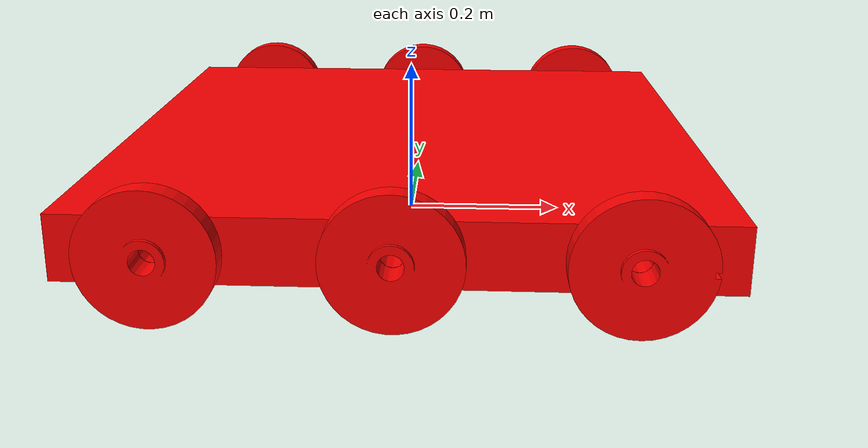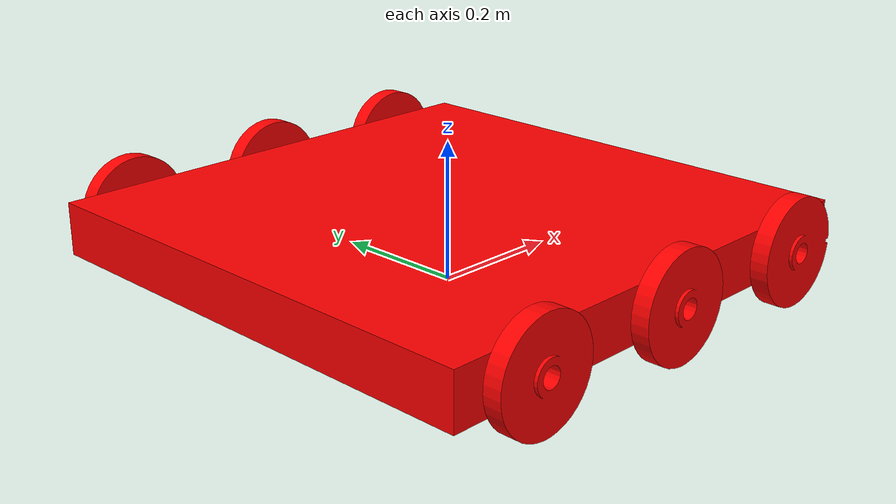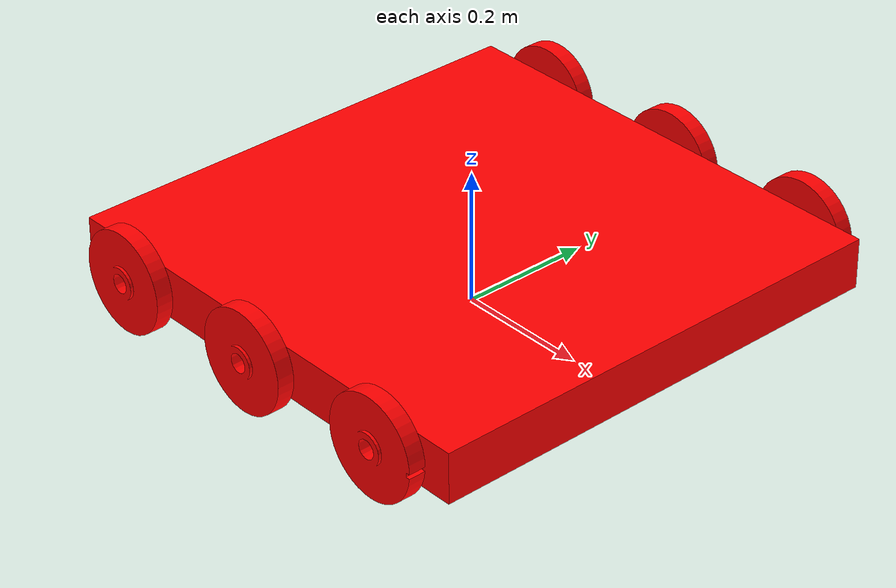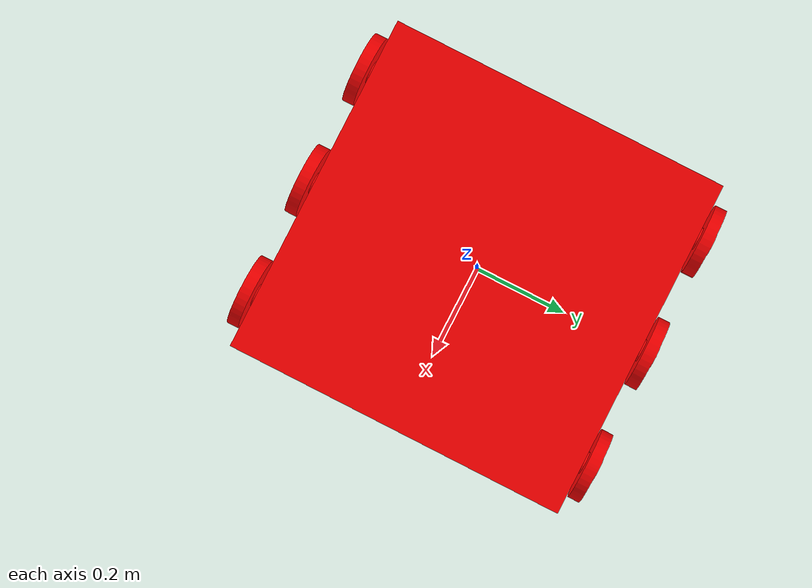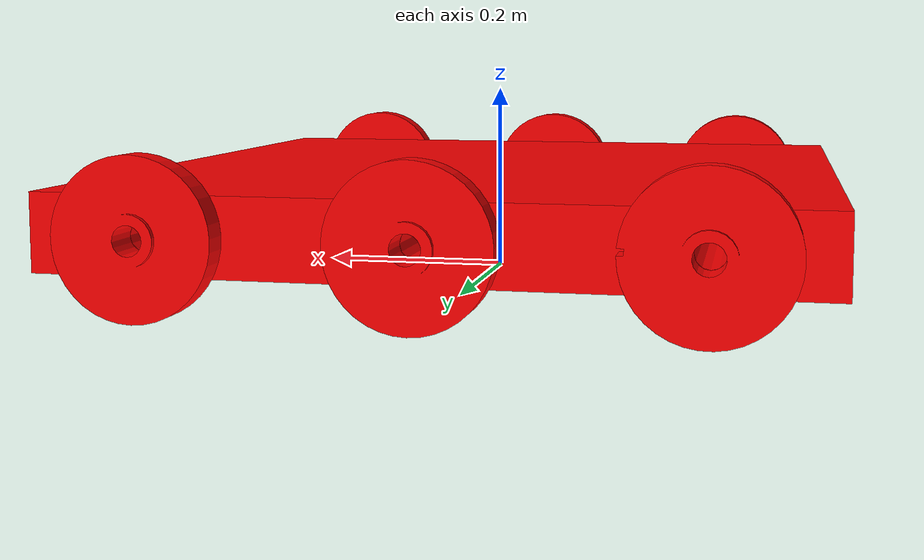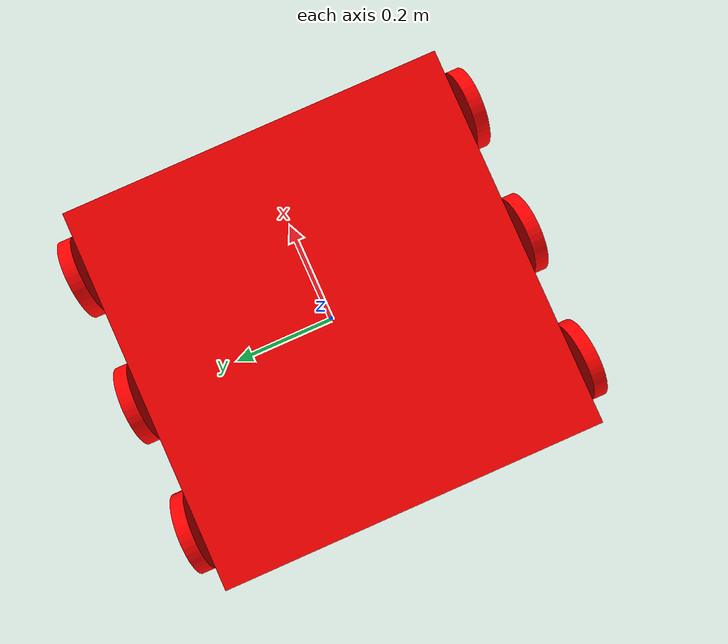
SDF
<?xml version="1.0" encoding="utf-8"?>
<sdf version="1.5">
  <model name="SimpleStuart">
    <pose>0 0 0 0 0 0</pose>
    <plugin name="clock" filename="libgz_clock.so">
      <topic>/gazebo/frc/time</topic>
    </plugin>
    <link name="Chassis">
      <gravity>1</gravity>
      <self_collide>0</self_collide>
      <pose>-5.24950953688064E-17 -7.91438036766167E-18 0.0762 0 0 3.14159265358979</pose>
      <must_be_base_link>1</must_be_base_link>
      <velocity_decay>
        <linear>0</linear>
        <angular>0</angular>
      </velocity_decay>
      <inertial>
        <mass>39.9274140786862</mass>
        <pose>0 0 0 0 0 0</pose>
        <inertia>
          <ixx>1.82524963543948</ixx>
          <ixy>1.70483805918591E-16</ixy>
          <ixz>2.30985295761967E-17</ixz>
          <iyy>1.82830112935258</iyy>
          <iyz>1.88765550142291E-16</iyz>
          <izz>3.61368462103833</izz>
        </inertia>
      </inertial>
      <collision name="Chassis_collision">
        <pose>1.00160570517153E-16 1.03107922094854E-16 -0.0762 0 0 0</pose>
        <geometry>
          <mesh>
            <scale>1 1 1</scale>
            <uri>model://SimpleStuart/meshes/Chassis_col.STL</uri>
          </mesh>
        </geometry>
        <surface>
          <contact>
            <ode />
          </contact>
          <friction>
            <ode>
              <mu>0</mu>
              <mu2>0</mu2>
            </ode>
          </friction>
        </surface>
      </collision>
      <visual name="Chassis_visual">
        <pose>1.00160570517153E-16 1.03107922094854E-16 -0.0762 0 0 0</pose>
        <material>
          <ambient>1 0 0 1</ambient>
          <diffuse>1 0 0 1</diffuse>
        </material>
        <geometry>
          <mesh>
            <scale>1 1 1</scale>
            <uri>model://SimpleStuart/meshes/Chassis.STL</uri>
          </mesh>
        </geometry>
      </visual>
    </link>
    <link name="FR">
      <gravity>1</gravity>
      <self_collide>0</self_collide>
      <pose>0.253835982855687 -0.3857625 0.0762071611431738 0 0 3.14159265358979</pose>
      <must_be_base_link>0</must_be_base_link>
      <velocity_decay>
        <linear>0</linear>
        <angular>0</angular>
      </velocity_decay>
      <inertial>
        <mass>0.457331279947093</mass>
        <pose>0 0 0 0 0 0</pose>
        <inertia>
          <ixx>0.000700532742273407</ixx>
          <ixy>8.61127243540891E-20</ixy>
          <ixz>2.39540711703553E-07</ixz>
          <iyy>0.00134244112895742</iyy>
          <iyz>8.94542055616815E-20</iyz>
          <izz>0.000695056816546582</izz>
        </inertia>
      </inertial>
      <collision name="FR_collision">
        <pose>0.253835982855687 -0.3857625 -0.0762071611431738 0 0 0</pose>
        <geometry>
          <mesh>
            <scale>1 1 1</scale>
            <uri>model://SimpleStuart/meshes/FR_col.STL</uri>
          </mesh>
        </geometry>
        <surface>
          <contact>
            <ode />
          </contact>
          <friction>
            <ode>
              <mu>0.55</mu>
              <mu2>0.55</mu2>
            </ode>
          </friction>
        </surface>
      </collision>
      <visual name="FR_visual">
        <pose>0.253835982855687 -0.3857625 -0.0762071611431738 0 0 0</pose>
        <material>
          <ambient>1 0 0 1</ambient>
          <diffuse>1 0 0 1</diffuse>
        </material>
        <geometry>
          <mesh>
            <scale>1 1 1</scale>
            <uri>model://SimpleStuart/meshes/FR.STL</uri>
          </mesh>
        </geometry>
      </visual>
    </link>
    <joint name="Chassis-FR" type="revolute">
      <parent>Chassis</parent>
      <child>FR</child>
      <pose>-0.000164017144313133 -5.55111512312578E-17 -7.16114317381167E-06 0 0 0</pose>
      <axis>
        <xyz>0 -1 0</xyz>
        <dynamics>
          <damping>0</damping>
          <friction>0</friction>
        </dynamics>
        <limit>
          <effort>1</effort>
        </limit>
      </axis>
    </joint>
    <link name="MR">
      <gravity>1</gravity>
      <self_collide>0</self_collide>
      <pose>-0.000164017144313362 -0.3857625 0.0762071611431738 0 0 3.14159265358979</pose>
      <must_be_base_link>0</must_be_base_link>
      <velocity_decay>
        <linear>0</linear>
        <angular>0</angular>
      </velocity_decay>
      <inertial>
        <mass>0.457331279947093</mass>
        <pose>0 0 0 0 0 0</pose>
        <inertia>
          <ixx>0.000700532742273407</ixx>
          <ixy>8.33339144837938E-20</ixy>
          <ixz>2.39540711703591E-07</ixz>
          <iyy>0.00134244112895742</iyy>
          <iyz>9.00471260398201E-20</iyz>
          <izz>0.000695056816546582</izz>
        </inertia>
      </inertial>
      <collision name="MR_collision">
        <pose>-0.000164017144313162 -0.3857625 -0.0762071611431738 0 0 0</pose>
        <geometry>
          <mesh>
            <scale>1 1 1</scale>
            <uri>model://SimpleStuart/meshes/MR_col.STL</uri>
          </mesh>
        </geometry>
        <surface>
          <contact>
            <ode />
          </contact>
          <friction>
            <ode>
              <mu>0.55</mu>
              <mu2>0.55</mu2>
            </ode>
          </friction>
        </surface>
      </collision>
      <visual name="MR_visual">
        <pose>-0.000164017144313162 -0.3857625 -0.0762071611431738 0 0 0</pose>
        <material>
          <ambient>1 0 0 1</ambient>
          <diffuse>1 0 0 1</diffuse>
        </material>
        <geometry>
          <mesh>
            <scale>1 1 1</scale>
            <uri>model://SimpleStuart/meshes/MR.STL</uri>
          </mesh>
        </geometry>
      </visual>
    </link>
    <joint name="Chassis-MR" type="revolute">
      <parent>Chassis</parent>
      <child>MR</child>
      <pose>-0.000164017144313162 -5.55111512312578E-17 -7.16114317381167E-06 0 0 0</pose>
      <axis>
        <xyz>0 -1 0</xyz>
        <dynamics>
          <damping>0</damping>
          <friction>0</friction>
        </dynamics>
        <limit>
          <effort>1</effort>
        </limit>
      </axis>
    </joint>
    <link name="BR">
      <gravity>1</gravity>
      <self_collide>0</self_collide>
      <pose>-0.254164017144313 -0.3857625 0.0762071611431738 0 0 3.14159265358979</pose>
      <must_be_base_link>0</must_be_base_link>
      <velocity_decay>
        <linear>0</linear>
        <angular>0</angular>
      </velocity_decay>
      <inertial>
        <mass>0.457331279947093</mass>
        <pose>0 0 0 0 0 0</pose>
        <inertia>
          <ixx>0.000700532742273407</ixx>
          <ixy>8.59156508192713E-20</ixy>
          <ixz>2.39540711703577E-07</ixz>
          <iyy>0.00134244112895742</iyy>
          <iyz>8.9144548917466E-20</iyz>
          <izz>0.000695056816546582</izz>
        </inertia>
      </inertial>
      <collision name="BR_collision">
        <pose>-0.254164017144313 -0.3857625 -0.0762071611431738 0 0 0</pose>
        <geometry>
          <mesh>
            <scale>1 1 1</scale>
            <uri>model://SimpleStuart/meshes/BR_col.STL</uri>
          </mesh>
        </geometry>
        <surface>
          <contact>
            <ode />
          </contact>
          <friction>
            <ode>
              <mu>0.55</mu>
              <mu2>0.55</mu2>
            </ode>
          </friction>
        </surface>
      </collision>
      <visual name="BR_visual">
        <pose>-0.254164017144313 -0.3857625 -0.0762071611431738 0 0 0</pose>
        <material>
          <ambient>1 0 0 1</ambient>
          <diffuse>1 0 0 1</diffuse>
        </material>
        <geometry>
          <mesh>
            <scale>1 1 1</scale>
            <uri>model://SimpleStuart/meshes/BR.STL</uri>
          </mesh>
        </geometry>
      </visual>
    </link>
    <joint name="Chassis-BR" type="revolute">
      <parent>Chassis</parent>
      <child>BR</child>
      <pose>-0.000164017144313133 -5.55111512312578E-17 -7.16114317381167E-06 0 0 0</pose>
      <axis>
        <xyz>0 -1 0</xyz>
        <dynamics>
          <damping>0</damping>
          <friction>0</friction>
        </dynamics>
        <limit>
          <effort>1</effort>
        </limit>
      </axis>
    </joint>
    <link name="FL">
      <gravity>1</gravity>
      <self_collide>0</self_collide>
      <pose>0.253835982855687 0.3857625 0.0761928388568262 0 0 3.14159265358979</pose>
      <must_be_base_link>0</must_be_base_link>
      <velocity_decay>
        <linear>0</linear>
        <angular>0</angular>
      </velocity_decay>
      <inertial>
        <mass>0.457331279947093</mass>
        <pose>0 0 0 0 0 0</pose>
        <inertia>
          <ixx>0.000700532742273406</ixx>
          <ixy>8.28824938453414E-22</ixy>
          <ixz>2.39540711703549E-07</ixz>
          <iyy>0.00134244112895742</iyy>
          <iyz>1.49946539289685E-21</iyz>
          <izz>0.000695056816546581</izz>
        </inertia>
      </inertial>
      <collision name="FL_collision">
        <pose>0.253835982855687 0.3857625 -0.0761928388568262 0 0 0</pose>
        <geometry>
          <mesh>
            <scale>1 1 1</scale>
            <uri>model://SimpleStuart/meshes/FL_col.STL</uri>
          </mesh>
        </geometry>
        <surface>
          <contact>
            <ode />
          </contact>
          <friction>
            <ode>
              <mu>0.55</mu>
              <mu2>0.55</mu2>
            </ode>
          </friction>
        </surface>
      </collision>
      <visual name="FL_visual">
        <pose>0.253835982855687 0.3857625 -0.0761928388568262 0 0 0</pose>
        <material>
          <ambient>1 0 0 1</ambient>
          <diffuse>1 0 0 1</diffuse>
        </material>
        <geometry>
          <mesh>
            <scale>1 1 1</scale>
            <uri>model://SimpleStuart/meshes/FL.STL</uri>
          </mesh>
        </geometry>
      </visual>
    </link>
    <joint name="Chassis-FL" type="revolute">
      <parent>Chassis</parent>
      <child>FL</child>
      <pose>-0.0001640171443133 -5.55111512312578E-17 7.16114317386718E-06 0 0 0</pose>
      <axis>
        <xyz>0 -1 0</xyz>
        <dynamics>
          <damping>0</damping>
          <friction>0</friction>
        </dynamics>
        <limit>
          <effort>1</effort>
        </limit>
      </axis>
    </joint>
    <link name="ML">
      <gravity>1</gravity>
      <self_collide>0</self_collide>
      <pose>-0.000164017144313377 0.3857625 0.0761928388568261 0 0 3.14159265358979</pose>
      <must_be_base_link>0</must_be_base_link>
      <velocity_decay>
        <linear>0</linear>
        <angular>0</angular>
      </velocity_decay>
      <inertial>
        <mass>0.457331279947093</mass>
        <pose>0 0 0 0 0 0</pose>
        <inertia>
          <ixx>0.000700532742273406</ixx>
          <ixy>1.03397576569128E-21</ixy>
          <ixz>2.39540711703589E-07</ixz>
          <iyy>0.00134244112895742</iyy>
          <iyz>1.49926486025236E-21</iyz>
          <izz>0.000695056816546581</izz>
        </inertia>
      </inertial>
      <collision name="ML_collision">
        <pose>-0.000164017144313272 0.3857625 -0.0761928388568261 0 0 0</pose>
        <geometry>
          <mesh>
            <scale>1 1 1</scale>
            <uri>model://SimpleStuart/meshes/ML_col.STL</uri>
          </mesh>
        </geometry>
        <surface>
          <contact>
            <ode />
          </contact>
          <friction>
            <ode>
              <mu>0.55</mu>
              <mu2>0.55</mu2>
            </ode>
          </friction>
        </surface>
      </collision>
      <visual name="ML_visual">
        <pose>-0.000164017144313272 0.3857625 -0.0761928388568261 0 0 0</pose>
        <material>
          <ambient>1 0 0 1</ambient>
          <diffuse>1 0 0 1</diffuse>
        </material>
        <geometry>
          <mesh>
            <scale>1 1 1</scale>
            <uri>model://SimpleStuart/meshes/ML.STL</uri>
          </mesh>
        </geometry>
      </visual>
    </link>
    <joint name="Chassis-ML" type="revolute">
      <parent>Chassis</parent>
      <child>ML</child>
      <pose>-0.000164017144313272 0 7.16114317388106E-06 0 0 0</pose>
      <axis>
        <xyz>0 -1 0</xyz>
        <dynamics>
          <damping>0</damping>
          <friction>0</friction>
        </dynamics>
        <limit>
          <effort>1</effort>
        </limit>
      </axis>
    </joint>
    <link name="BL">
      <gravity>1</gravity>
      <self_collide>0</self_collide>
      <pose>-0.254164017144313 0.3857625 0.0761928388568261 0 0 3.14159265358979</pose>
      <must_be_base_link>0</must_be_base_link>
      <velocity_decay>
        <linear>0</linear>
        <angular>0</angular>
      </velocity_decay>
      <inertial>
        <mass>0.457331279947093</mass>
        <pose>0 0 0 0 0 0</pose>
        <inertia>
          <ixx>0.000700532742273406</ixx>
          <ixy>8.33166436114286E-22</ixy>
          <ixz>2.39540711703574E-07</ixz>
          <iyy>0.00134244112895742</iyy>
          <iyz>1.50008947509389E-21</iyz>
          <izz>0.000695056816546581</izz>
        </inertia>
      </inertial>
      <collision name="BL_collision">
        <pose>-0.254164017144313 0.3857625 -0.0761928388568261 0 0 0</pose>
        <geometry>
          <mesh>
            <scale>1 1 1</scale>
            <uri>model://SimpleStuart/meshes/BL_col.STL</uri>
          </mesh>
        </geometry>
        <surface>
          <contact>
            <ode />
          </contact>
          <friction>
            <ode>
              <mu>0.55</mu>
              <mu2>0.55</mu2>
            </ode>
          </friction>
        </surface>
      </collision>
      <visual name="BL_visual">
        <pose>-0.254164017144313 0.3857625 -0.0761928388568261 0 0 0</pose>
        <material>
          <ambient>1 0 0 1</ambient>
          <diffuse>1 0 0 1</diffuse>
        </material>
        <geometry>
          <mesh>
            <scale>1 1 1</scale>
            <uri>model://SimpleStuart/meshes/BL.STL</uri>
          </mesh>
        </geometry>
      </visual>
    </link>
    <joint name="Chassis-BL" type="revolute">
      <parent>Chassis</parent>
      <child>BL</child>
      <pose>-0.000164017144313244 0 7.16114317386718E-06 0 0 0</pose>
      <axis>
        <xyz>0 -1 0</xyz>
        <dynamics>
          <damping>0</damping>
          <friction>0</friction>
        </dynamics>
        <limit>
          <effort>1</effort>
        </limit>
      </axis>
    </joint>
    <plugin name="Chassis-FR_motor" filename="libgz_dc_motor.so">
      <joint>Chassis-FR</joint>
      <topic>/gazebo/frc/simulator/pwm/2</topic>
      <multiplier>0</multiplier>
    </plugin>
    <plugin name="Chassis-MR_motor" filename="libgz_dc_motor.so">
      <joint>Chassis-MR</joint>
      <topic>/gazebo/frc/simulator/pwm/2</topic>
      <multiplier>0</multiplier>
    </plugin>
    <plugin name="Chassis-MR_encoder" filename="libgz_encoder.so">
      <joint>Chassis-MR</joint>
      <topic>/gazebo/frc/simulator/dio/1/3</topic>
      <units>degrees</units>
    </plugin>
    <plugin name="Chassis-BR_motor" filename="libgz_dc_motor.so">
      <joint>Chassis-BR</joint>
      <topic>/gazebo/frc/simulator/pwm/2</topic>
      <multiplier>0</multiplier>
    </plugin>
    <plugin name="Chassis-FL_motor" filename="libgz_dc_motor.so">
      <joint>Chassis-FL</joint>
      <topic>/gazebo/frc/simulator/pwm/3</topic>
      <multiplier>0</multiplier>
    </plugin>
    <plugin name="Chassis-ML_motor" filename="libgz_dc_motor.so">
      <joint>Chassis-ML</joint>
      <topic>/gazebo/frc/simulator/pwm/3</topic>
      <multiplier>0</multiplier>
    </plugin>
    <plugin name="Chassis-ML_encoder" filename="libgz_encoder.so">
      <joint>Chassis-ML</joint>
      <topic>/gazebo/frc/simulator/dio/0/2</topic>
      <units>degrees</units>
    </plugin>
    <plugin name="Chassis-BL_motor" filename="libgz_dc_motor.so">
      <joint>Chassis-BL</joint>
      <topic>/gazebo/frc/simulator/pwm/3</topic>
      <multiplier>0</multiplier>
    </plugin>
  </model>
</sdf>
